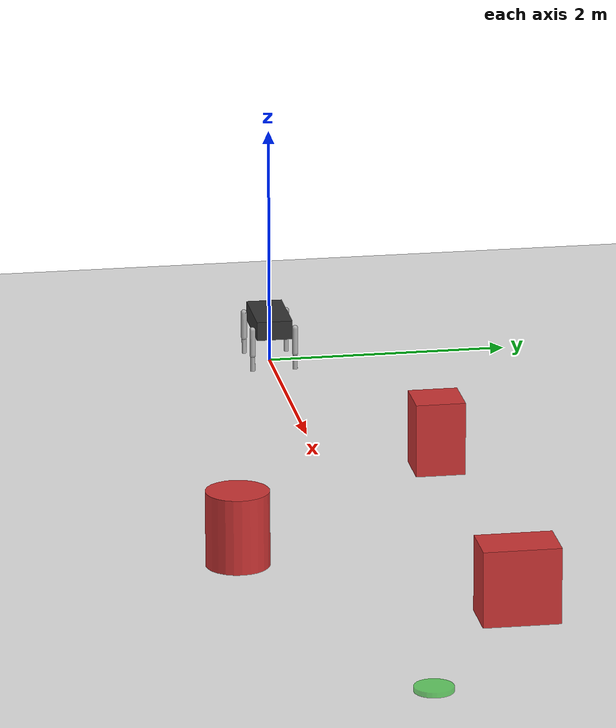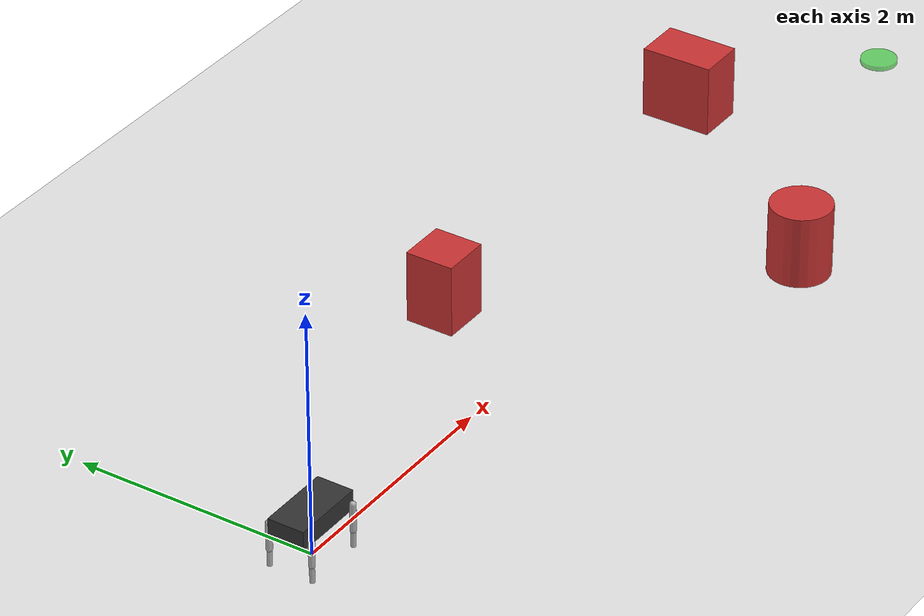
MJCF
<mujoco model="deep_robotics_m20_pro_obstacle_nav">
  <compiler angle="degree" coordinate="local" inertiafromgeom="true"/>
  <option timestep="0.002" gravity="0 0 -9.81" integrator="implicitfast"/>

  <default>
    <joint damping="2.0" armature="0.02"/>
    <geom contype="1" conaffinity="1" friction="1.2 0.2 0.1" rgba="0.7 0.7 0.7 1"/>
    <position kp="60" ctrllimited="true"/>
  </default>

  <worldbody>
    <light diffuse=".6 .6 .6" pos="0 0 5" dir="0 0 -1"/>
    <geom name="floor" type="plane" size="12 12 0.1" rgba="0.9 0.9 0.9 1"/>

    <body name="m20_pro_slider_x" pos="0 0 0">
      <inertial pos="0 0 0" mass="0.001" diaginertia="1e-6 1e-6 1e-6"/>
      <joint name="base_x" type="slide" axis="1 0 0" damping="5"/>
      <body name="m20_pro_slider_y">
        <inertial pos="0 0 0" mass="0.001" diaginertia="1e-6 1e-6 1e-6"/>
        <joint name="base_y" type="slide" axis="0 1 0" damping="5"/>
        <body name="m20_pro_base" pos="0 0 0.35">
          <joint name="base_yaw" type="hinge" axis="0 0 1" damping="5"/>
          <inertial pos="0 0 0" mass="18.0" diaginertia="0.30 0.60 0.70"/>
          <geom name="base_geom" type="box" size="0.30 0.15 0.08" rgba="0.2 0.2 0.2 1"/>

          <!-- Four legs, 3 actuated joints each (hip, thigh, calf) -->
          <body name="fl_hip" pos="0.25 0.12 0">
            <joint name="fl_hip_joint" type="hinge" axis="1 0 0" range="-30 30"/>
            <geom type="cylinder" size="0.03 0.04" rgba="0.3 0.3 0.3 1" contype="0" conaffinity="0"/>
            <body name="fl_thigh" pos="0 0.06 0">
              <joint name="fl_thigh_joint" type="hinge" axis="0 1 0" range="-90 90"/>
              <geom type="capsule" fromto="0 0 0 0 0 -0.22" size="0.025" contype="0" conaffinity="0"/>
              <body name="fl_calf" pos="0 0 -0.22">
                <joint name="fl_calf_joint" type="hinge" axis="0 1 0" range="-150 -10"/>
                <geom type="capsule" fromto="0 0 0 0 0 -0.22" size="0.02" contype="0" conaffinity="0"/>
              </body>
            </body>
          </body>

          <body name="fr_hip" pos="0.25 -0.12 0">
            <joint name="fr_hip_joint" type="hinge" axis="1 0 0" range="-30 30"/>
            <geom type="cylinder" size="0.03 0.04" rgba="0.3 0.3 0.3 1" contype="0" conaffinity="0"/>
            <body name="fr_thigh" pos="0 -0.06 0">
              <joint name="fr_thigh_joint" type="hinge" axis="0 1 0" range="-90 90"/>
              <geom type="capsule" fromto="0 0 0 0 0 -0.22" size="0.025" contype="0" conaffinity="0"/>
              <body name="fr_calf" pos="0 0 -0.22">
                <joint name="fr_calf_joint" type="hinge" axis="0 1 0" range="-150 -10"/>
                <geom type="capsule" fromto="0 0 0 0 0 -0.22" size="0.02" contype="0" conaffinity="0"/>
              </body>
            </body>
          </body>

          <body name="rl_hip" pos="-0.25 0.12 0">
            <joint name="rl_hip_joint" type="hinge" axis="1 0 0" range="-30 30"/>
            <geom type="cylinder" size="0.03 0.04" rgba="0.3 0.3 0.3 1" contype="0" conaffinity="0"/>
            <body name="rl_thigh" pos="0 0.06 0">
              <joint name="rl_thigh_joint" type="hinge" axis="0 1 0" range="-90 90"/>
              <geom type="capsule" fromto="0 0 0 0 0 -0.22" size="0.025" contype="0" conaffinity="0"/>
              <body name="rl_calf" pos="0 0 -0.22">
                <joint name="rl_calf_joint" type="hinge" axis="0 1 0" range="-150 -10"/>
                <geom type="capsule" fromto="0 0 0 0 0 -0.22" size="0.02" contype="0" conaffinity="0"/>
              </body>
            </body>
          </body>

          <body name="rr_hip" pos="-0.25 -0.12 0">
            <joint name="rr_hip_joint" type="hinge" axis="1 0 0" range="-30 30"/>
            <geom type="cylinder" size="0.03 0.04" rgba="0.3 0.3 0.3 1" contype="0" conaffinity="0"/>
            <body name="rr_thigh" pos="0 -0.06 0">
              <joint name="rr_thigh_joint" type="hinge" axis="0 1 0" range="-90 90"/>
              <geom type="capsule" fromto="0 0 0 0 0 -0.22" size="0.025" contype="0" conaffinity="0"/>
              <body name="rr_calf" pos="0 0 -0.22">
                <joint name="rr_calf_joint" type="hinge" axis="0 1 0" range="-150 -10"/>
                <geom type="capsule" fromto="0 0 0 0 0 -0.22" size="0.02" contype="0" conaffinity="0"/>
              </body>
            </body>
          </body>
        </body>
      </body>
    </body>

    <!-- Obstacles for obstacle-avoidance navigation -->
    <body name="obstacle_1" pos="3.0 0.9 0.3">
      <geom type="box" size="0.2 0.2 0.3" rgba="0.8 0.2 0.2 1"/>
    </body>
    <body name="obstacle_2" pos="5.0 -1.0 0.3">
      <geom type="cylinder" size="0.25 0.3" rgba="0.8 0.2 0.2 1"/>
    </body>
    <body name="obstacle_3" pos="6.5 0.9 0.3">
      <geom type="box" size="0.2 0.3 0.3" rgba="0.8 0.2 0.2 1"/>
    </body>

    <!-- Goal marker -->
    <body name="goal_marker" pos="8.0 0.0 0.05">
      <geom type="cylinder" size="0.15 0.02" rgba="0.1 0.8 0.1 0.6" contype="0" conaffinity="0"/>
    </body>
  </worldbody>

  <actuator>
    <velocity name="base_vx"  joint="base_x"   kv="200" ctrlrange="-1.5 1.5"/>
    <velocity name="base_vy"  joint="base_y"   kv="200" ctrlrange="-1.5 1.5"/>
    <velocity name="base_wz"  joint="base_yaw" kv="80"  ctrlrange="-1.0 1.0"/>
    <position name="fl_hip"   joint="fl_hip_joint"   ctrlrange="-30 30"/>
    <position name="fl_thigh" joint="fl_thigh_joint" ctrlrange="-90 90"/>
    <position name="fl_calf"  joint="fl_calf_joint"  ctrlrange="-150 -10"/>
    <position name="fr_hip"   joint="fr_hip_joint"   ctrlrange="-30 30"/>
    <position name="fr_thigh" joint="fr_thigh_joint" ctrlrange="-90 90"/>
    <position name="fr_calf"  joint="fr_calf_joint"  ctrlrange="-150 -10"/>
    <position name="rl_hip"   joint="rl_hip_joint"   ctrlrange="-30 30"/>
    <position name="rl_thigh" joint="rl_thigh_joint" ctrlrange="-90 90"/>
    <position name="rl_calf"  joint="rl_calf_joint"  ctrlrange="-150 -10"/>
    <position name="rr_hip"   joint="rr_hip_joint"   ctrlrange="-30 30"/>
    <position name="rr_thigh" joint="rr_thigh_joint" ctrlrange="-90 90"/>
    <position name="rr_calf"  joint="rr_calf_joint"  ctrlrange="-150 -10"/>
  </actuator>
</mujoco>
